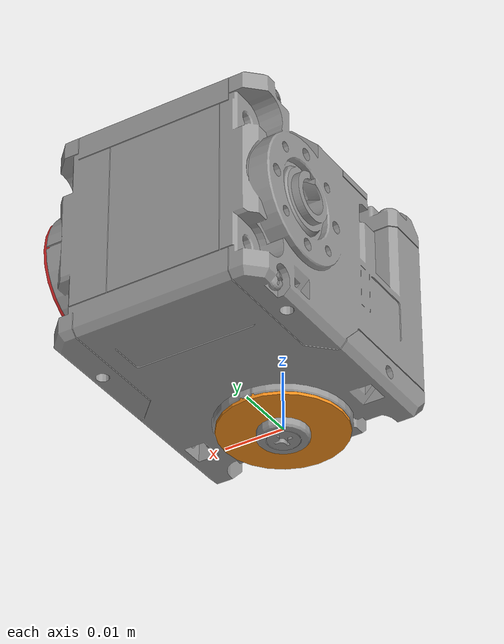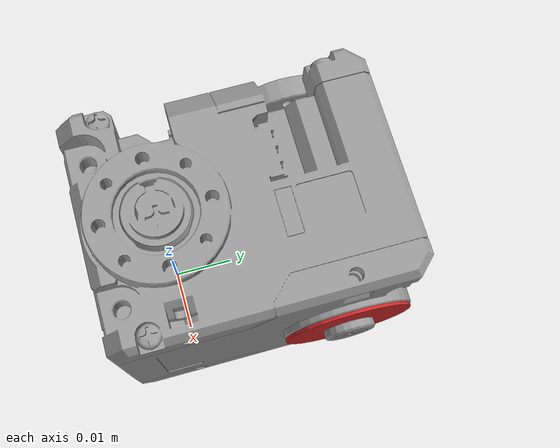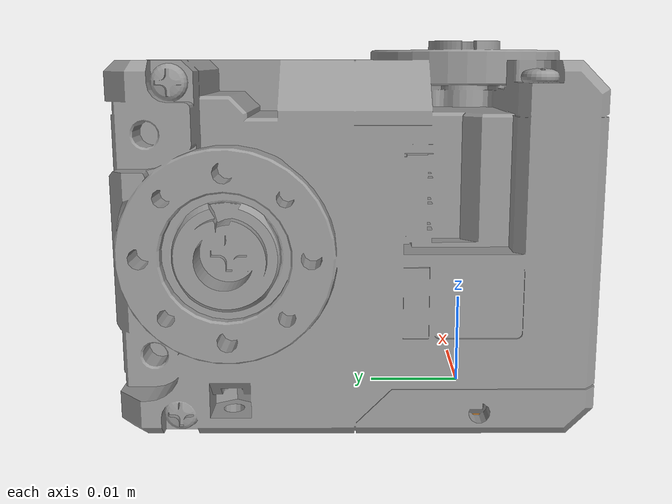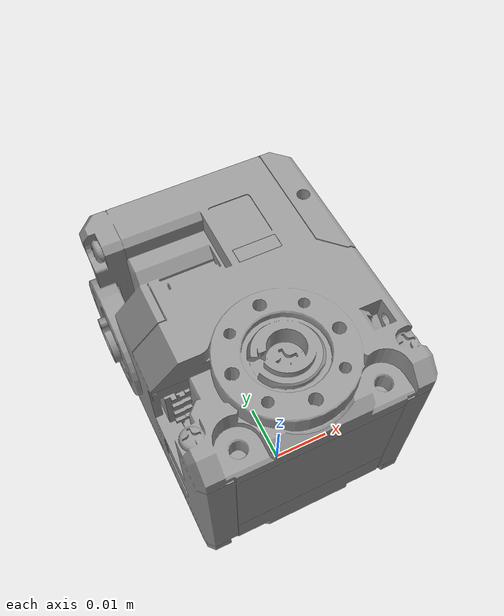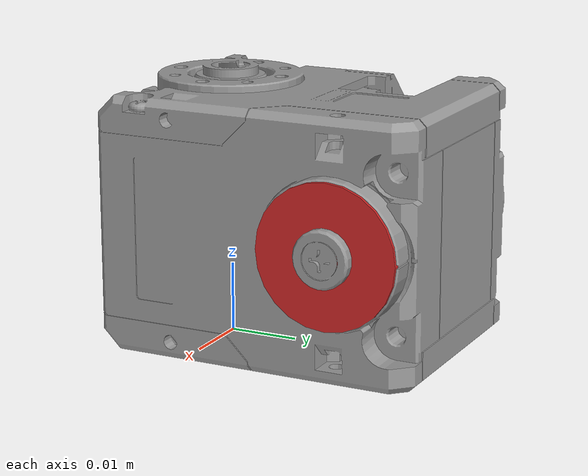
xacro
<?xml version="1.0"?>
<robot name="my_robo" xmlns:xacro="http://ros.org/wiki/xacro">\
	<xacro:include filename="$(find turtlebot3_description)/urdf/common_properties.xacro"/>

	<link name="base"/>

	<joint name="base_puntilt" type="fixed">
		<parent link="base"/>
		<child link="dynx_2XL430_hone_yaw"/>
		<origin xyz="0 0 0" rpy="0 0 0"/>
	</joint>

	<joint name="2XL430_yaw_joint" type="fixed">
		<parent link="dynx_2XL430_hone_yaw"/>
		<child link="dynx_2XL430"/>
		<origin xyz="${0/1000} ${12/1000} ${19/1000}" rpy="3.1415926535 0 0"/>
		<!--6.3879[rad/sec]=61[rev/min], 1.5[Nm]-->
	</joint>

	<link name="dynx_2XL430_hone_yaw">
		<visual>
			<origin xyz="0 0 0" rpy="0 0 0"/>
			<geometry>
				<cylinder length="0.001" radius="0.01"/>
			</geometry>
			<material name="orange"/>
		</visual>
	</link>

	<link name="dynx_2XL430">
			<inertial>
				<origin xyz="0 0 0" rpy="0 0 0"/>
				<mass value="${98.2/1000}"/>
				<inertia ixx="0.1"  ixy="0"  ixz="0" iyy="0.1" iyz="0" izz="0.1" /> <!-- not correct todo-->
			</inertial>
			<visual>
				<origin xyz="0 0 0" rpy="0 0 0" />
				<geometry>
					<mesh filename="package://turtlebot3_description/meshes/dynamixel/2XL430-W250-T.stl" />
				</geometry>
			</visual>
			<collision>
				<origin xyz="0 0 0" rpy="0 0 0"/>
				<geometry>
					<mesh filename="package://turtlebot3_description/meshes/dynamixel/2XL430-W250-T.stl"/>
				</geometry>
			</collision>
	</link>

	<joint name="2XL430_pitch_joint" type="fixed">
		<parent link="dynx_2XL430"/>
		<child link="dynx_2XL430_hone_pitch"/>
		<origin xyz="${19/1000} ${-12/1000} ${0/1000}" rpy="0 0 0"/>
		<!--6.3879[rad/sec]=61[rev/min], 1.5[Nm]-->
	</joint>

	<link name="dynx_2XL430_hone_pitch">
		<visual>
			<origin xyz="0 0 0" rpy="0 ${3.1415926535/2} 0"/>
			<geometry>
				<cylinder length="0.001" radius="0.01"/>
			</geometry>
			<material name="red"/>
		</visual>
	</link>

	<gazebo reference="dynx_2XL430">
		<material>Gazebo/Grey</material>
	</gazebo>

	<gazebo reference="dynx_2XL430_hone_yaw">
		<material>Gazebo/Orange</material>
	</gazebo>

	<gazebo reference="dynx_2XL430_hone_pitch">
		<material>Gazebo/Red</material>
	</gazebo>

</robot>
